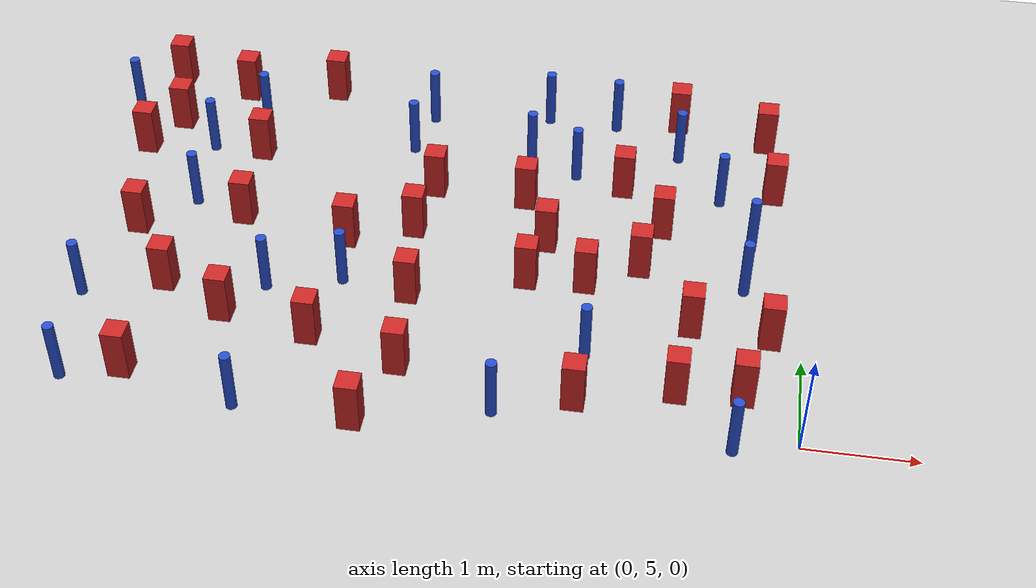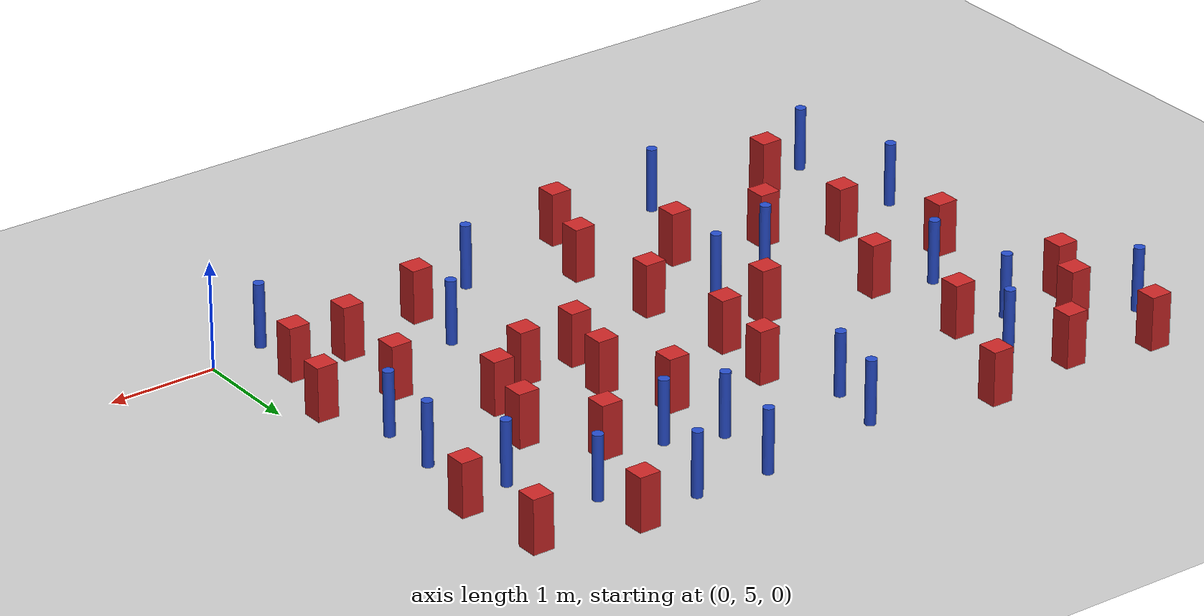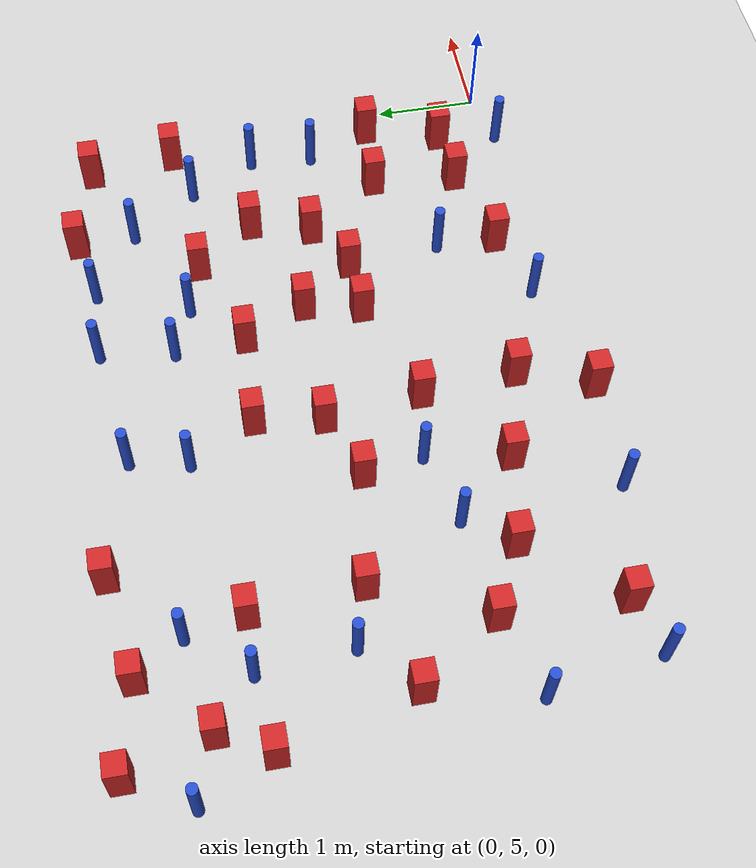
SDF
<sdf version="1.6">
 <world name="default">
  <model name="ground_plane">
   <static>1</static>
   <link name="link">
    <collision name="collision">
     <geometry><plane><normal>0 0 1</normal><size>100 100</size></plane></geometry>
     <surface><friction><ode><mu>100</mu><mu2>50</mu2></ode></friction></surface>
    </collision>
    <visual name="visual">
     <cast_shadows>0</cast_shadows>
     <geometry><plane><normal>0 0 1</normal><size>100 100</size></plane></geometry>
     <material>
      <ambient>1.0 1.0 1.0 1.0</ambient>
      <diffuse>0.8 0.8 0.8 1.0</diffuse>
      <specular>0.01 0.01 0.01 1.000000</specular>
     </material>
    </visual>
   </link>
  </model>
  <model name="pole_obstacle8">
   <static>true</static>
   <pose>-3.82206462456 9.02512292885 7.38925637345e-09 -8.47170692799e-08 1.24976765012e-08 -1.74513093021e-07</pose>
   <link name="link">
    <pose>0 0 0.3 0 -0 0</pose>
    <inertial>
     <mass>1</mass>
     <inertia><ixx>0.145833</ixx><ixy>0</ixy><ixz>0</ixz><iyy>0.145833</iyy><iyz>0</iyz><izz>0.125</izz></inertia>
    </inertial>
    <collision name="collision">
     <geometry><cylinder><radius>0.05</radius><length>.6</length></cylinder></geometry>
    </collision>
    <visual name="visual">
     <geometry><cylinder><radius>0.05</radius><length>.6</length></cylinder></geometry>
     <material>
      <script><name>Gazebo/Blue</name><uri>file://media/materials/scripts/gazebo.material</uri></script>
     </material>
    </visual>
   </link>
  </model>
  <model name="pole_obstacle10">
   <static>true</static>
   <pose>-6.55610675831 5.88170207349 7.38925637345e-09 -8.47170692796e-08 1.24976764786e-08 -1.74513093032e-07</pose>
   <link name="link">
    <pose>0 0 0.3 0 -0 0</pose>
    <inertial>
     <mass>1</mass>
     <inertia><ixx>0.145833</ixx><ixy>0</ixy><ixz>0</ixz><iyy>0.145833</iyy><iyz>0</iyz><izz>0.125</izz></inertia>
    </inertial>
    <collision name="collision">
     <geometry><cylinder><radius>0.05</radius><length>.6</length></cylinder></geometry>
    </collision>
    <visual name="visual">
     <geometry><cylinder><radius>0.05</radius><length>.6</length></cylinder></geometry>
     <material>
      <script><name>Gazebo/Blue</name><uri>file://media/materials/scripts/gazebo.material</uri></script>
     </material>
    </visual>
   </link>
  </model>
  <model name="square_post_obstacle21">
   <static>true</static>
   <pose>-4.3045964948 6.98042461301 1.91545236811e-07 -7.35059704564e-06 1.12565212e-07 2.39332434364e-05</pose>
   <link name="link">
    <pose>0 0 0.25 0 -0 0</pose>
    <inertial>
     <mass>100</mass>
     <inertia>
      <ixx>0.166667</ixx>
      <ixy>0</ixy>
      <ixz>0</ixz>
      <iyy>0.166667</iyy>
      <iyz>0</iyz>
      <izz>0.166667</izz>
     </inertia>
    </inertial>
    <collision name="collision"><geometry><box><size>.2 .2 .5</size></box></geometry></collision>
    <visual name="visual">
     <geometry><box><size>.2 .2 .5</size></box></geometry>
     <material>
      <script><name>Gazebo/Red</name><uri>file://media/materials/scripts/gazebo.material</uri></script>
     </material>
    </visual>
   </link>
  </model>
  <model name="pole_obstacle14">
   <static>true</static>
   <pose>-0.487251782713 7.45424853015 7.38925637345e-09 -8.471706928e-08 1.24976765062e-08 -1.74513093016e-07</pose>
   <link name="link">
    <pose>0 0 0.3 0 -0 0</pose>
    <inertial>
     <mass>1</mass>
     <inertia><ixx>0.145833</ixx><ixy>0</ixy><ixz>0</ixz><iyy>0.145833</iyy><iyz>0</iyz><izz>0.125</izz></inertia>
    </inertial>
    <collision name="collision">
     <geometry><cylinder><radius>0.05</radius><length>.6</length></cylinder></geometry>
    </collision>
    <visual name="visual">
     <geometry><cylinder><radius>0.05</radius><length>.6</length></cylinder></geometry>
     <material>
      <script><name>Gazebo/Blue</name><uri>file://media/materials/scripts/gazebo.material</uri></script>
     </material>
    </visual>
   </link>
  </model>
  <model name="square_post_obstacle24">
   <static>true</static>
   <pose>-1.34190381826 7.57631637367 1.91545236811e-07 -7.35059704564e-06 1.12565212e-07 2.39332434364e-05</pose>
   <link name="link">
    <pose>0 0 0.25 0 -0 0</pose>
    <inertial>
     <mass>100</mass>
     <inertia>
      <ixx>0.166667</ixx>
      <ixy>0</ixy>
      <ixz>0</ixz>
      <iyy>0.166667</iyy>
      <iyz>0</iyz>
      <izz>0.166667</izz>
     </inertia>
    </inertial>
    <collision name="collision"><geometry><box><size>.2 .2 .5</size></box></geometry></collision>
    <visual name="visual">
     <geometry><box><size>.2 .2 .5</size></box></geometry>
     <material>
      <script><name>Gazebo/Red</name><uri>file://media/materials/scripts/gazebo.material</uri></script>
     </material>
    </visual>
   </link>
  </model>
  <model name="square_post_obstacle25">
   <static>true</static>
   <pose>-5.35857846901 7.15570614176 1.91545236811e-07 -7.35059704564e-06 1.12565212e-07 2.39332434364e-05</pose>
   <link name="link">
    <pose>0 0 0.25 0 -0 0</pose>
    <inertial>
     <mass>100</mass>
     <inertia>
      <ixx>0.166667</ixx>
      <ixy>0</ixy>
      <ixz>0</ixz>
      <iyy>0.166667</iyy>
      <iyz>0</iyz>
      <izz>0.166667</izz>
     </inertia>
    </inertial>
    <collision name="collision"><geometry><box><size>.2 .2 .5</size></box></geometry></collision>
    <visual name="visual">
     <geometry><box><size>.2 .2 .5</size></box></geometry>
     <material>
      <script><name>Gazebo/Red</name><uri>file://media/materials/scripts/gazebo.material</uri></script>
     </material>
    </visual>
   </link>
  </model>
  <model name="square_post_obstacle29">
   <static>true</static>
   <pose>-1.98612517827 6.69314189389 1.91545236811e-07 -7.35059704564e-06 1.12565212e-07 2.39332434364e-05</pose>
   <link name="link">
    <pose>0 0 0.25 0 -0 0</pose>
    <inertial>
     <mass>100</mass>
     <inertia>
      <ixx>0.166667</ixx>
      <ixy>0</ixy>
      <ixz>0</ixz>
      <iyy>0.166667</iyy>
      <iyz>0</iyz>
      <izz>0.166667</izz>
     </inertia>
    </inertial>
    <collision name="collision"><geometry><box><size>.2 .2 .5</size></box></geometry></collision>
    <visual name="visual">
     <geometry><box><size>.2 .2 .5</size></box></geometry>
     <material>
      <script><name>Gazebo/Red</name><uri>file://media/materials/scripts/gazebo.material</uri></script>
     </material>
    </visual>
   </link>
  </model>
  <model name="pole_obstacle25">
   <static>true</static>
   <pose>-1.2587366664 8.73435117649 7.38925637345e-09 -8.47170692798e-08 1.24976764881e-08 -1.74513093027e-07</pose>
   <link name="link">
    <pose>0 0 0.3 0 -0 0</pose>
    <inertial>
     <mass>1</mass>
     <inertia><ixx>0.145833</ixx><ixy>0</ixy><ixz>0</ixz><iyy>0.145833</iyy><iyz>0</iyz><izz>0.125</izz></inertia>
    </inertial>
    <collision name="collision">
     <geometry><cylinder><radius>0.05</radius><length>.6</length></cylinder></geometry>
    </collision>
    <visual name="visual">
     <geometry><cylinder><radius>0.05</radius><length>.6</length></cylinder></geometry>
     <material>
      <script><name>Gazebo/Blue</name><uri>file://media/materials/scripts/gazebo.material</uri></script>
     </material>
    </visual>
   </link>
  </model>
  <model name="pole_obstacle29">
   <static>true</static>
   <pose>-4.21491245848 6.41125337489 7.38925637345e-09 -8.47170692796e-08 1.24976764786e-08 -1.74513093032e-07</pose>
   <link name="link">
    <pose>0 0 0.3 0 -0 0</pose>
    <inertial>
     <mass>1</mass>
     <inertia><ixx>0.145833</ixx><ixy>0</ixy><ixz>0</ixz><iyy>0.145833</iyy><iyz>0</iyz><izz>0.125</izz></inertia>
    </inertial>
    <collision name="collision">
     <geometry><cylinder><radius>0.05</radius><length>.6</length></cylinder></geometry>
    </collision>
    <visual name="visual">
     <geometry><cylinder><radius>0.05</radius><length>.6</length></cylinder></geometry>
     <material>
      <script><name>Gazebo/Blue</name><uri>file://media/materials/scripts/gazebo.material</uri></script>
     </material>
    </visual>
   </link>
  </model>
  <model name="pole_obstacle40">
   <static>true</static>
   <pose>-4.89472344938 6.21809530151 7.38925637345e-09 -8.47170692796e-08 1.24976764786e-08 -1.74513093032e-07</pose>
   <link name="link">
    <pose>0 0 0.3 0 -0 0</pose>
    <inertial>
     <mass>1</mass>
     <inertia><ixx>0.145833</ixx><ixy>0</ixy><ixz>0</ixz><iyy>0.145833</iyy><iyz>0</iyz><izz>0.125</izz></inertia>
    </inertial>
    <collision name="collision">
     <geometry><cylinder><radius>0.05</radius><length>.6</length></cylinder></geometry>
    </collision>
    <visual name="visual">
     <geometry><cylinder><radius>0.05</radius><length>.6</length></cylinder></geometry>
     <material>
      <script><name>Gazebo/Blue</name><uri>file://media/materials/scripts/gazebo.material</uri></script>
     </material>
    </visual>
   </link>
  </model>
  <model name="square_post_obstacle48">
   <static>true</static>
   <pose>-0.403407051033 9.08101264634 1.91545236811e-07 -7.35059704564e-06 1.12565212e-07 2.39332434364e-05</pose>
   <link name="link">
    <pose>0 0 0.25 0 -0 0</pose>
    <inertial>
     <mass>100</mass>
     <inertia>
      <ixx>0.166667</ixx>
      <ixy>0</ixy>
      <ixz>0</ixz>
      <iyy>0.166667</iyy>
      <iyz>0</iyz>
      <izz>0.166667</izz>
     </inertia>
    </inertial>
    <collision name="collision"><geometry><box><size>.2 .2 .5</size></box></geometry></collision>
    <visual name="visual">
     <geometry><box><size>.2 .2 .5</size></box></geometry>
     <material>
      <script><name>Gazebo/Red</name><uri>file://media/materials/scripts/gazebo.material</uri></script>
     </material>
    </visual>
   </link>
  </model>
  <model name="square_post_obstacle56">
   <static>true</static>
   <pose>-4.35194648026 5.64008125414 1.91545236811e-07 -7.35059704564e-06 1.12565212e-07 2.39332434364e-05</pose>
   <link name="link">
    <pose>0 0 0.25 0 -0 0</pose>
    <inertial>
     <mass>100</mass>
     <inertia>
      <ixx>0.166667</ixx>
      <ixy>0</ixy>
      <ixz>0</ixz>
      <iyy>0.166667</iyy>
      <iyz>0</iyz>
      <izz>0.166667</izz>
     </inertia>
    </inertial>
    <collision name="collision"><geometry><box><size>.2 .2 .5</size></box></geometry></collision>
    <visual name="visual">
     <geometry><box><size>.2 .2 .5</size></box></geometry>
     <material>
      <script><name>Gazebo/Red</name><uri>file://media/materials/scripts/gazebo.material</uri></script>
     </material>
    </visual>
   </link>
  </model>
  <model name="square_post_obstacle63">
   <static>true</static>
   <pose>-3.68970607952 7.22125167198 1.91545236811e-07 -7.35059704564e-06 1.12565212e-07 2.39332434364e-05</pose>
   <link name="link">
    <pose>0 0 0.25 0 -0 0</pose>
    <inertial>
     <mass>100</mass>
     <inertia>
      <ixx>0.166667</ixx>
      <ixy>0</ixy>
      <ixz>0</ixz>
      <iyy>0.166667</iyy>
      <iyz>0</iyz>
      <izz>0.166667</izz>
     </inertia>
    </inertial>
    <collision name="collision"><geometry><box><size>.2 .2 .5</size></box></geometry></collision>
    <visual name="visual">
     <geometry><box><size>.2 .2 .5</size></box></geometry>
     <material>
      <script><name>Gazebo/Red</name><uri>file://media/materials/scripts/gazebo.material</uri></script>
     </material>
    </visual>
   </link>
  </model>
  <model name="square_post_obstacle72">
   <static>true</static>
   <pose>-4.92007702492 9.30849317937 1.91545236811e-07 -7.35059704564e-06 1.12565212e-07 2.39332434364e-05</pose>
   <link name="link">
    <pose>0 0 0.25 0 -0 0</pose>
    <inertial>
     <mass>100</mass>
     <inertia>
      <ixx>0.166667</ixx>
      <ixy>0</ixy>
      <ixz>0</ixz>
      <iyy>0.166667</iyy>
      <iyz>0</iyz>
      <izz>0.166667</izz>
     </inertia>
    </inertial>
    <collision name="collision"><geometry><box><size>.2 .2 .5</size></box></geometry></collision>
    <visual name="visual">
     <geometry><box><size>.2 .2 .5</size></box></geometry>
     <material>
      <script><name>Gazebo/Red</name><uri>file://media/materials/scripts/gazebo.material</uri></script>
     </material>
    </visual>
   </link>
  </model>
  <model name="square_post_obstacle74">
   <static>true</static>
   <pose>-3.57919890928 6.30277527051 1.91545236811e-07 -7.35059704564e-06 1.12565212e-07 2.39332434364e-05</pose>
   <link name="link">
    <pose>0 0 0.25 0 -0 0</pose>
    <inertial>
     <mass>100</mass>
     <inertia>
      <ixx>0.166667</ixx>
      <ixy>0</ixy>
      <ixz>0</ixz>
      <iyy>0.166667</iyy>
      <iyz>0</iyz>
      <izz>0.166667</izz>
     </inertia>
    </inertial>
    <collision name="collision"><geometry><box><size>.2 .2 .5</size></box></geometry></collision>
    <visual name="visual">
     <geometry><box><size>.2 .2 .5</size></box></geometry>
     <material>
      <script><name>Gazebo/Red</name><uri>file://media/materials/scripts/gazebo.material</uri></script>
     </material>
    </visual>
   </link>
  </model>
  <model name="pole_obstacle75">
   <static>true</static>
   <pose>-6.37267081743 4.82648727636 7.38925637345e-09 -8.47170692796e-08 1.24976764786e-08 -1.74513093032e-07</pose>
   <link name="link">
    <pose>0 0 0.3 0 -0 0</pose>
    <inertial>
     <mass>1</mass>
     <inertia><ixx>0.145833</ixx><ixy>0</ixy><ixz>0</ixz><iyy>0.145833</iyy><iyz>0</iyz><izz>0.125</izz></inertia>
    </inertial>
    <collision name="collision">
     <geometry><cylinder><radius>0.05</radius><length>.6</length></cylinder></geometry>
    </collision>
    <visual name="visual">
     <geometry><cylinder><radius>0.05</radius><length>.6</length></cylinder></geometry>
     <material>
      <script><name>Gazebo/Blue</name><uri>file://media/materials/scripts/gazebo.material</uri></script>
     </material>
    </visual>
   </link>
  </model>
  <model name="pole_obstacle79">
   <static>true</static>
   <pose>-0.530865533459 6.83654905438 7.38925637345e-09 -8.471706928e-08 1.24976765117e-08 -1.74513093013e-07</pose>
   <link name="link">
    <pose>0 0 0.3 0 -0 0</pose>
    <inertial>
     <mass>1</mass>
     <inertia><ixx>0.145833</ixx><ixy>0</ixy><ixz>0</ixz><iyy>0.145833</iyy><iyz>0</iyz><izz>0.125</izz></inertia>
    </inertial>
    <collision name="collision">
     <geometry><cylinder><radius>0.05</radius><length>.6</length></cylinder></geometry>
    </collision>
    <visual name="visual">
     <geometry><cylinder><radius>0.05</radius><length>.6</length></cylinder></geometry>
     <material>
      <script><name>Gazebo/Blue</name><uri>file://media/materials/scripts/gazebo.material</uri></script>
     </material>
    </visual>
   </link>
  </model>
  <model name="pole_obstacle83">
   <static>true</static>
   <pose>-0.554646805553 4.87033910405 7.38925637345e-09 -8.471706928e-08 1.24976765086e-08 -1.74513093015e-07</pose>
   <link name="link">
    <pose>0 0 0.3 0 -0 0</pose>
    <inertial>
     <mass>1</mass>
     <inertia><ixx>0.145833</ixx><ixy>0</ixy><ixz>0</ixz><iyy>0.145833</iyy><iyz>0</iyz><izz>0.125</izz></inertia>
    </inertial>
    <collision name="collision">
     <geometry><cylinder><radius>0.05</radius><length>.6</length></cylinder></geometry>
    </collision>
    <visual name="visual">
     <geometry><cylinder><radius>0.05</radius><length>.6</length></cylinder></geometry>
     <material>
      <script><name>Gazebo/Blue</name><uri>file://media/materials/scripts/gazebo.material</uri></script>
     </material>
    </visual>
   </link>
  </model>
  <model name="square_post_obstacle81">
   <static>true</static>
   <pose>-1.06439011656 5.43613494731 1.91545236811e-07 -7.35059704564e-06 1.12565212e-07 2.39332434364e-05</pose>
   <link name="link">
    <pose>0 0 0.25 0 -0 0</pose>
    <inertial>
     <mass>100</mass>
     <inertia>
      <ixx>0.166667</ixx>
      <ixy>0</ixy>
      <ixz>0</ixz>
      <iyy>0.166667</iyy>
      <iyz>0</iyz>
      <izz>0.166667</izz>
     </inertia>
    </inertial>
    <collision name="collision"><geometry><box><size>.2 .2 .5</size></box></geometry></collision>
    <visual name="visual">
     <geometry><box><size>.2 .2 .5</size></box></geometry>
     <material>
      <script><name>Gazebo/Red</name><uri>file://media/materials/scripts/gazebo.material</uri></script>
     </material>
    </visual>
   </link>
  </model>
  <model name="pole_obstacle95">
   <static>true</static>
   <pose>-4.79074152801 4.71663315275 7.38925637345e-09 -8.47170692796e-08 1.24976764786e-08 -1.74513093032e-07</pose>
   <link name="link">
    <pose>0 0 0.3 0 -0 0</pose>
    <inertial>
     <mass>1</mass>
     <inertia><ixx>0.145833</ixx><ixy>0</ixy><ixz>0</ixz><iyy>0.145833</iyy><iyz>0</iyz><izz>0.125</izz></inertia>
    </inertial>
    <collision name="collision">
     <geometry><cylinder><radius>0.05</radius><length>.6</length></cylinder></geometry>
    </collision>
    <visual name="visual">
     <geometry><cylinder><radius>0.05</radius><length>.6</length></cylinder></geometry>
     <material>
      <script><name>Gazebo/Blue</name><uri>file://media/materials/scripts/gazebo.material</uri></script>
     </material>
    </visual>
   </link>
  </model>
  <model name="square_post_obstacle85">
   <static>true</static>
   <pose>-5.19582386874 5.80616912891 1.91545236811e-07 -7.35059704564e-06 1.12565212e-07 2.39332434364e-05</pose>
   <link name="link">
    <pose>0 0 0.25 0 -0 0</pose>
    <inertial>
     <mass>100</mass>
     <inertia>
      <ixx>0.166667</ixx>
      <ixy>0</ixy>
      <ixz>0</ixz>
      <iyy>0.166667</iyy>
      <iyz>0</iyz>
      <izz>0.166667</izz>
     </inertia>
    </inertial>
    <collision name="collision"><geometry><box><size>.2 .2 .5</size></box></geometry></collision>
    <visual name="visual">
     <geometry><box><size>.2 .2 .5</size></box></geometry>
     <material>
      <script><name>Gazebo/Red</name><uri>file://media/materials/scripts/gazebo.material</uri></script>
     </material>
    </visual>
   </link>
  </model>
  <model name="pole_obstacle106">
   <static>true</static>
   <pose>-5.96531714351 8.18852639938 7.38925637345e-09 -8.471706928e-08 1.24976765081e-08 -1.74513093015e-07</pose>
   <link name="link">
    <pose>0 0 0.3 0 -0 0</pose>
    <inertial>
     <mass>1</mass>
     <inertia><ixx>0.145833</ixx><ixy>0</ixy><ixz>0</ixz><iyy>0.145833</iyy><iyz>0</iyz><izz>0.125</izz></inertia>
    </inertial>
    <collision name="collision">
     <geometry><cylinder><radius>0.05</radius><length>.6</length></cylinder></geometry>
    </collision>
    <visual name="visual">
     <geometry><cylinder><radius>0.05</radius><length>.6</length></cylinder></geometry>
     <material>
      <script><name>Gazebo/Blue</name><uri>file://media/materials/scripts/gazebo.material</uri></script>
     </material>
    </visual>
   </link>
  </model>
  <model name="square_post_obstacle94">
   <static>true</static>
   <pose>-2.53074050167 6.66489583475 1.91545236811e-07 -7.35059704564e-06 1.12565212e-07 2.39332434364e-05</pose>
   <link name="link">
    <pose>0 0 0.25 0 -0 0</pose>
    <inertial>
     <mass>100</mass>
     <inertia>
      <ixx>0.166667</ixx>
      <ixy>0</ixy>
      <ixz>0</ixz>
      <iyy>0.166667</iyy>
      <iyz>0</iyz>
      <izz>0.166667</izz>
     </inertia>
    </inertial>
    <collision name="collision"><geometry><box><size>.2 .2 .5</size></box></geometry></collision>
    <visual name="visual">
     <geometry><box><size>.2 .2 .5</size></box></geometry>
     <material>
      <script><name>Gazebo/Red</name><uri>file://media/materials/scripts/gazebo.material</uri></script>
     </material>
    </visual>
   </link>
  </model>
  <model name="square_post_obstacle95">
   <static>true</static>
   <pose>-0.280602323057 6.2162434328 1.91545236811e-07 -7.35059704564e-06 1.12565212e-07 2.39332434364e-05</pose>
   <link name="link">
    <pose>0 0 0.25 0 -0 0</pose>
    <inertial>
     <mass>100</mass>
     <inertia>
      <ixx>0.166667</ixx>
      <ixy>0</ixy>
      <ixz>0</ixz>
      <iyy>0.166667</iyy>
      <iyz>0</iyz>
      <izz>0.166667</izz>
     </inertia>
    </inertial>
    <collision name="collision"><geometry><box><size>.2 .2 .5</size></box></geometry></collision>
    <visual name="visual">
     <geometry><box><size>.2 .2 .5</size></box></geometry>
     <material>
      <script><name>Gazebo/Red</name><uri>file://media/materials/scripts/gazebo.material</uri></script>
     </material>
    </visual>
   </link>
  </model>
  <model name="pole_obstacle108">
   <static>true</static>
   <pose>-2.6296051062 9.19149806185 7.38925637345e-09 -8.47170692793e-08 1.24976764408e-08 -1.74513093041e-07</pose>
   <link name="link">
    <pose>0 0 0.3 0 -0 0</pose>
    <inertial>
     <mass>1</mass>
     <inertia><ixx>0.145833</ixx><ixy>0</ixy><ixz>0</ixz><iyy>0.145833</iyy><iyz>0</iyz><izz>0.125</izz></inertia>
    </inertial>
    <collision name="collision">
     <geometry><cylinder><radius>0.05</radius><length>.6</length></cylinder></geometry>
    </collision>
    <visual name="visual">
     <geometry><cylinder><radius>0.05</radius><length>.6</length></cylinder></geometry>
     <material>
      <script><name>Gazebo/Blue</name><uri>file://media/materials/scripts/gazebo.material</uri></script>
     </material>
    </visual>
   </link>
  </model>
  <model name="pole_obstacle109">
   <static>true</static>
   <pose>-2.5933989536 4.98916896431 7.38925637345e-09 -8.47170692798e-08 1.24976765033e-08 -1.74513093019e-07</pose>
   <link name="link">
    <pose>0 0 0.3 0 -0 0</pose>
    <inertial>
     <mass>1</mass>
     <inertia><ixx>0.145833</ixx><ixy>0</ixy><ixz>0</ixz><iyy>0.145833</iyy><iyz>0</iyz><izz>0.125</izz></inertia>
    </inertial>
    <collision name="collision">
     <geometry><cylinder><radius>0.05</radius><length>.6</length></cylinder></geometry>
    </collision>
    <visual name="visual">
     <geometry><cylinder><radius>0.05</radius><length>.6</length></cylinder></geometry>
     <material>
      <script><name>Gazebo/Blue</name><uri>file://media/materials/scripts/gazebo.material</uri></script>
     </material>
    </visual>
   </link>
  </model>
  <model name="pole_obstacle110">
   <static>true</static>
   <pose>-5.88621984248 7.31610643793 7.38925637345e-09 -8.47170692796e-08 1.24976764786e-08 -1.74513093032e-07</pose>
   <link name="link">
    <pose>0 0 0.3 0 -0 0</pose>
    <inertial>
     <mass>1</mass>
     <inertia><ixx>0.145833</ixx><ixy>0</ixy><ixz>0</ixz><iyy>0.145833</iyy><iyz>0</iyz><izz>0.125</izz></inertia>
    </inertial>
    <collision name="collision">
     <geometry><cylinder><radius>0.05</radius><length>.6</length></cylinder></geometry>
    </collision>
    <visual name="visual">
     <geometry><cylinder><radius>0.05</radius><length>.6</length></cylinder></geometry>
     <material>
      <script><name>Gazebo/Blue</name><uri>file://media/materials/scripts/gazebo.material</uri></script>
     </material>
    </visual>
   </link>
  </model>
  <model name="square_post_obstacle103">
   <static>true</static>
   <pose>-3.49818858472 5.39473668093 1.91545236811e-07 -7.35059704564e-06 1.12565212e-07 2.39332434364e-05</pose>
   <link name="link">
    <pose>0 0 0.25 0 -0 0</pose>
    <inertial>
     <mass>100</mass>
     <inertia>
      <ixx>0.166667</ixx>
      <ixy>0</ixy>
      <ixz>0</ixz>
      <iyy>0.166667</iyy>
      <iyz>0</iyz>
      <izz>0.166667</izz>
     </inertia>
    </inertial>
    <collision name="collision"><geometry><box><size>.2 .2 .5</size></box></geometry></collision>
    <visual name="visual">
     <geometry><box><size>.2 .2 .5</size></box></geometry>
     <material>
      <script><name>Gazebo/Red</name><uri>file://media/materials/scripts/gazebo.material</uri></script>
     </material>
    </visual>
   </link>
  </model>
  <model name="square_post_obstacle109">
   <static>true</static>
   <pose>-1.76757691139 8.14035792633 1.91545236811e-07 -7.35059704564e-06 1.12565212e-07 2.39332434364e-05</pose>
   <link name="link">
    <pose>0 0 0.25 0 -0 0</pose>
    <inertial>
     <mass>100</mass>
     <inertia>
      <ixx>0.166667</ixx>
      <ixy>0</ixy>
      <ixz>0</ixz>
      <iyy>0.166667</iyy>
      <iyz>0</iyz>
      <izz>0.166667</izz>
     </inertia>
    </inertial>
    <collision name="collision"><geometry><box><size>.2 .2 .5</size></box></geometry></collision>
    <visual name="visual">
     <geometry><box><size>.2 .2 .5</size></box></geometry>
     <material>
      <script><name>Gazebo/Red</name><uri>file://media/materials/scripts/gazebo.material</uri></script>
     </material>
    </visual>
   </link>
  </model>
  <model name="square_post_obstacle111">
   <static>true</static>
   <pose>-6.63623175859 8.10664112777 1.91545236811e-07 -7.35059704564e-06 1.12565212e-07 2.39332434364e-05</pose>
   <link name="link">
    <pose>0 0 0.25 0 -0 0</pose>
    <inertial>
     <mass>100</mass>
     <inertia>
      <ixx>0.166667</ixx>
      <ixy>0</ixy>
      <ixz>0</ixz>
      <iyy>0.166667</iyy>
      <iyz>0</iyz>
      <izz>0.166667</izz>
     </inertia>
    </inertial>
    <collision name="collision"><geometry><box><size>.2 .2 .5</size></box></geometry></collision>
    <visual name="visual">
     <geometry><box><size>.2 .2 .5</size></box></geometry>
     <material>
      <script><name>Gazebo/Red</name><uri>file://media/materials/scripts/gazebo.material</uri></script>
     </material>
    </visual>
   </link>
  </model>
  <model name="pole_obstacle133">
   <static>true</static>
   <pose>-6.95051044414 8.76397631887 7.38925637345e-09 -8.471706928e-08 1.24976765081e-08 -1.74513093015e-07</pose>
   <link name="link">
    <pose>0 0 0.3 0 -0 0</pose>
    <inertial>
     <mass>1</mass>
     <inertia><ixx>0.145833</ixx><ixy>0</ixy><ixz>0</ixz><iyy>0.145833</iyy><iyz>0</iyz><izz>0.125</izz></inertia>
    </inertial>
    <collision name="collision">
     <geometry><cylinder><radius>0.05</radius><length>.6</length></cylinder></geometry>
    </collision>
    <visual name="visual">
     <geometry><cylinder><radius>0.05</radius><length>.6</length></cylinder></geometry>
     <material>
      <script><name>Gazebo/Blue</name><uri>file://media/materials/scripts/gazebo.material</uri></script>
     </material>
    </visual>
   </link>
  </model>
  <model name="pole_obstacle138">
   <static>true</static>
   <pose>-1.93087196424 9.16514735695 7.38925637345e-09 -8.47170692798e-08 1.24976764881e-08 -1.74513093027e-07</pose>
   <link name="link">
    <pose>0 0 0.3 0 -0 0</pose>
    <inertial>
     <mass>1</mass>
     <inertia><ixx>0.145833</ixx><ixy>0</ixy><ixz>0</ixz><iyy>0.145833</iyy><iyz>0</iyz><izz>0.125</izz></inertia>
    </inertial>
    <collision name="collision">
     <geometry><cylinder><radius>0.05</radius><length>.6</length></cylinder></geometry>
    </collision>
    <visual name="visual">
     <geometry><cylinder><radius>0.05</radius><length>.6</length></cylinder></geometry>
     <material>
      <script><name>Gazebo/Blue</name><uri>file://media/materials/scripts/gazebo.material</uri></script>
     </material>
    </visual>
   </link>
  </model>
  <model name="square_post_obstacle122">
   <static>true</static>
   <pose>-6.39860686602 8.5599530788 1.91545236811e-07 -7.35059704564e-06 1.12565212e-07 2.39332434364e-05</pose>
   <link name="link">
    <pose>0 0 0.25 0 -0 0</pose>
    <inertial>
     <mass>100</mass>
     <inertia>
      <ixx>0.166667</ixx>
      <ixy>0</ixy>
      <ixz>0</ixz>
      <iyy>0.166667</iyy>
      <iyz>0</iyz>
      <izz>0.166667</izz>
     </inertia>
    </inertial>
    <collision name="collision"><geometry><box><size>.2 .2 .5</size></box></geometry></collision>
    <visual name="visual">
     <geometry><box><size>.2 .2 .5</size></box></geometry>
     <material>
      <script><name>Gazebo/Red</name><uri>file://media/materials/scripts/gazebo.material</uri></script>
     </material>
    </visual>
   </link>
  </model>
  <model name="square_post_obstacle123">
   <static>true</static>
   <pose>-3.74651887932 4.70047802236 1.91545236811e-07 -7.35059704564e-06 1.12565212e-07 2.39332434364e-05</pose>
   <link name="link">
    <pose>0 0 0.25 0 -0 0</pose>
    <inertial>
     <mass>100</mass>
     <inertia>
      <ixx>0.166667</ixx>
      <ixy>0</ixy>
      <ixz>0</ixz>
      <iyy>0.166667</iyy>
      <iyz>0</iyz>
      <izz>0.166667</izz>
     </inertia>
    </inertial>
    <collision name="collision"><geometry><box><size>.2 .2 .5</size></box></geometry></collision>
    <visual name="visual">
     <geometry><box><size>.2 .2 .5</size></box></geometry>
     <material>
      <script><name>Gazebo/Red</name><uri>file://media/materials/scripts/gazebo.material</uri></script>
     </material>
    </visual>
   </link>
  </model>
  <model name="square_post_obstacle127">
   <static>true</static>
   <pose>-6.63089012068 9.32858692312 1.91545236811e-07 -7.35059704564e-06 1.12565212e-07 2.39332434364e-05</pose>
   <link name="link">
    <pose>0 0 0.25 0 -0 0</pose>
    <inertial>
     <mass>100</mass>
     <inertia>
      <ixx>0.166667</ixx>
      <ixy>0</ixy>
      <ixz>0</ixz>
      <iyy>0.166667</iyy>
      <iyz>0</iyz>
      <izz>0.166667</izz>
     </inertia>
    </inertial>
    <collision name="collision"><geometry><box><size>.2 .2 .5</size></box></geometry></collision>
    <visual name="visual">
     <geometry><box><size>.2 .2 .5</size></box></geometry>
     <material>
      <script><name>Gazebo/Red</name><uri>file://media/materials/scripts/gazebo.material</uri></script>
     </material>
    </visual>
   </link>
  </model>
  <model name="square_post_obstacle128">
   <static>true</static>
   <pose>-0.298340017352 8.25667696657 1.91545236811e-07 -7.35059704564e-06 1.12565212e-07 2.39332434364e-05</pose>
   <link name="link">
    <pose>0 0 0.25 0 -0 0</pose>
    <inertial>
     <mass>100</mass>
     <inertia>
      <ixx>0.166667</ixx>
      <ixy>0</ixy>
      <ixz>0</ixz>
      <iyy>0.166667</iyy>
      <iyz>0</iyz>
      <izz>0.166667</izz>
     </inertia>
    </inertial>
    <collision name="collision"><geometry><box><size>.2 .2 .5</size></box></geometry></collision>
    <visual name="visual">
     <geometry><box><size>.2 .2 .5</size></box></geometry>
     <material>
      <script><name>Gazebo/Red</name><uri>file://media/materials/scripts/gazebo.material</uri></script>
     </material>
    </visual>
   </link>
  </model>
  <model name="square_post_obstacle132">
   <static>true</static>
   <pose>-1.29247726167 9.2924669874 1.91545236811e-07 -7.35059704564e-06 1.12565212e-07 2.39332434364e-05</pose>
   <link name="link">
    <pose>0 0 0.25 0 -0 0</pose>
    <inertial>
     <mass>100</mass>
     <inertia>
      <ixx>0.166667</ixx>
      <ixy>0</ixy>
      <ixz>0</ixz>
      <iyy>0.166667</iyy>
      <iyz>0</iyz>
      <izz>0.166667</izz>
     </inertia>
    </inertial>
    <collision name="collision"><geometry><box><size>.2 .2 .5</size></box></geometry></collision>
    <visual name="visual">
     <geometry><box><size>.2 .2 .5</size></box></geometry>
     <material>
      <script><name>Gazebo/Red</name><uri>file://media/materials/scripts/gazebo.material</uri></script>
     </material>
    </visual>
   </link>
  </model>
  <model name="square_post_obstacle133">
   <static>true</static>
   <pose>-2.69456108766 7.81204493432 1.91545236811e-07 -7.35059704564e-06 1.12565212e-07 2.39332434364e-05</pose>
   <link name="link">
    <pose>0 0 0.25 0 -0 0</pose>
    <inertial>
     <mass>100</mass>
     <inertia>
      <ixx>0.166667</ixx>
      <ixy>0</ixy>
      <ixz>0</ixz>
      <iyy>0.166667</iyy>
      <iyz>0</iyz>
      <izz>0.166667</izz>
     </inertia>
    </inertial>
    <collision name="collision"><geometry><box><size>.2 .2 .5</size></box></geometry></collision>
    <visual name="visual">
     <geometry><box><size>.2 .2 .5</size></box></geometry>
     <material>
      <script><name>Gazebo/Red</name><uri>file://media/materials/scripts/gazebo.material</uri></script>
     </material>
    </visual>
   </link>
  </model>
  <model name="square_post_obstacle135">
   <static>true</static>
   <pose>-1.92093611543 5.21443011539 1.91545236811e-07 -7.35059704564e-06 1.12565212e-07 2.39332434364e-05</pose>
   <link name="link">
    <pose>0 0 0.25 0 -0 0</pose>
    <inertial>
     <mass>100</mass>
     <inertia>
      <ixx>0.166667</ixx>
      <ixy>0</ixy>
      <ixz>0</ixz>
      <iyy>0.166667</iyy>
      <iyz>0</iyz>
      <izz>0.166667</izz>
     </inertia>
    </inertial>
    <collision name="collision"><geometry><box><size>.2 .2 .5</size></box></geometry></collision>
    <visual name="visual">
     <geometry><box><size>.2 .2 .5</size></box></geometry>
     <material>
      <script><name>Gazebo/Red</name><uri>file://media/materials/scripts/gazebo.material</uri></script>
     </material>
    </visual>
   </link>
  </model>
  <model name="square_post_obstacle136">
   <static>true</static>
   <pose>-2.41521971062 7.2089477699 1.91545236811e-07 -7.35059704564e-06 1.12565212e-07 2.39332434364e-05</pose>
   <link name="link">
    <pose>0 0 0.25 0 -0 0</pose>
    <inertial>
     <mass>100</mass>
     <inertia>
      <ixx>0.166667</ixx>
      <ixy>0</ixy>
      <ixz>0</ixz>
      <iyy>0.166667</iyy>
      <iyz>0</iyz>
      <izz>0.166667</izz>
     </inertia>
    </inertial>
    <collision name="collision"><geometry><box><size>.2 .2 .5</size></box></geometry></collision>
    <visual name="visual">
     <geometry><box><size>.2 .2 .5</size></box></geometry>
     <material>
      <script><name>Gazebo/Red</name><uri>file://media/materials/scripts/gazebo.material</uri></script>
     </material>
    </visual>
   </link>
  </model>
  <model name="square_post_obstacle137">
   <static>true</static>
   <pose>-1.50550222667 6.99188850677 1.91545236811e-07 -7.35059704564e-06 1.12565212e-07 2.39332434364e-05</pose>
   <link name="link">
    <pose>0 0 0.25 0 -0 0</pose>
    <inertial>
     <mass>100</mass>
     <inertia>
      <ixx>0.166667</ixx>
      <ixy>0</ixy>
      <ixz>0</ixz>
      <iyy>0.166667</iyy>
      <iyz>0</iyz>
      <izz>0.166667</izz>
     </inertia>
    </inertial>
    <collision name="collision"><geometry><box><size>.2 .2 .5</size></box></geometry></collision>
    <visual name="visual">
     <geometry><box><size>.2 .2 .5</size></box></geometry>
     <material>
      <script><name>Gazebo/Red</name><uri>file://media/materials/scripts/gazebo.material</uri></script>
     </material>
    </visual>
   </link>
  </model>
  <model name="pole_obstacle152">
   <static>true</static>
   <pose>-1.88695277153 5.78293968288 7.38925637345e-09 -8.47170692799e-08 1.24976765033e-08 -1.74513093018e-07</pose>
   <link name="link">
    <pose>0 0 0.3 0 -0 0</pose>
    <inertial>
     <mass>1</mass>
     <inertia><ixx>0.145833</ixx><ixy>0</ixy><ixz>0</ixz><iyy>0.145833</iyy><iyz>0</iyz><izz>0.125</izz></inertia>
    </inertial>
    <collision name="collision">
     <geometry><cylinder><radius>0.05</radius><length>.6</length></cylinder></geometry>
    </collision>
    <visual name="visual">
     <geometry><cylinder><radius>0.05</radius><length>.6</length></cylinder></geometry>
     <material>
      <script><name>Gazebo/Blue</name><uri>file://media/materials/scripts/gazebo.material</uri></script>
     </material>
    </visual>
   </link>
  </model>
  <model name="pole_obstacle153">
   <static>true</static>
   <pose>-0.811831626399 8.09818305222 7.38925637345e-09 -8.47170692797e-08 1.249767648e-08 -1.74513093032e-07</pose>
   <link name="link">
    <pose>0 0 0.3 0 -0 0</pose>
    <inertial>
     <mass>1</mass>
     <inertia><ixx>0.145833</ixx><ixy>0</ixy><ixz>0</ixz><iyy>0.145833</iyy><iyz>0</iyz><izz>0.125</izz></inertia>
    </inertial>
    <collision name="collision">
     <geometry><cylinder><radius>0.05</radius><length>.6</length></cylinder></geometry>
    </collision>
    <visual name="visual">
     <geometry><cylinder><radius>0.05</radius><length>.6</length></cylinder></geometry>
     <material>
      <script><name>Gazebo/Blue</name><uri>file://media/materials/scripts/gazebo.material</uri></script>
     </material>
    </visual>
   </link>
  </model>
  <model name="square_post_obstacle154">
   <static>true</static>
   <pose>-0.491725458304 5.4874470083 1.91545236811e-07 -7.35059704564e-06 1.12565212e-07 2.39332434364e-05</pose>
   <link name="link">
    <pose>0 0 0.25 0 -0 0</pose>
    <inertial>
     <mass>100</mass>
     <inertia>
      <ixx>0.166667</ixx>
      <ixy>0</ixy>
      <ixz>0</ixz>
      <iyy>0.166667</iyy>
      <iyz>0</iyz>
      <izz>0.166667</izz>
     </inertia>
    </inertial>
    <collision name="collision"><geometry><box><size>.2 .2 .5</size></box></geometry></collision>
    <visual name="visual">
     <geometry><box><size>.2 .2 .5</size></box></geometry>
     <material>
      <script><name>Gazebo/Red</name><uri>file://media/materials/scripts/gazebo.material</uri></script>
     </material>
    </visual>
   </link>
  </model>
  <model name="square_post_obstacle168">
   <static>true</static>
   <pose>-5.84829677226 9.15674940365 1.91545236811e-07 -7.35059704564e-06 1.12565212e-07 2.39332434364e-05</pose>
   <link name="link">
    <pose>0 0 0.25 0 -0 0</pose>
    <inertial>
     <mass>100</mass>
     <inertia>
      <ixx>0.166667</ixx>
      <ixy>0</ixy>
      <ixz>0</ixz>
      <iyy>0.166667</iyy>
      <iyz>0</iyz>
      <izz>0.166667</izz>
     </inertia>
    </inertial>
    <collision name="collision"><geometry><box><size>.2 .2 .5</size></box></geometry></collision>
    <visual name="visual">
     <geometry><box><size>.2 .2 .5</size></box></geometry>
     <material>
      <script><name>Gazebo/Red</name><uri>file://media/materials/scripts/gazebo.material</uri></script>
     </material>
    </visual>
   </link>
  </model>
  <model name="pole_obstacle180">
   <static>true</static>
   <pose>-2.72901205948 8.48556700037 7.38925637345e-09 -8.47170692793e-08 1.24976764408e-08 -1.74513093041e-07</pose>
   <link name="link">
    <pose>0 0 0.3 0 -0 0</pose>
    <inertial>
     <mass>1</mass>
     <inertia><ixx>0.145833</ixx><ixy>0</ixy><ixz>0</ixz><iyy>0.145833</iyy><iyz>0</iyz><izz>0.125</izz></inertia>
    </inertial>
    <collision name="collision">
     <geometry><cylinder><radius>0.05</radius><length>.6</length></cylinder></geometry>
    </collision>
    <visual name="visual">
     <geometry><cylinder><radius>0.05</radius><length>.6</length></cylinder></geometry>
     <material>
      <script><name>Gazebo/Blue</name><uri>file://media/materials/scripts/gazebo.material</uri></script>
     </material>
    </visual>
   </link>
  </model>
  <model name="square_post_obstacle177">
   <static>true</static>
   <pose>-6.32288723939 6.86812352656 1.91545236811e-07 -7.35059704564e-06 1.12565212e-07 2.39332434364e-05</pose>
   <link name="link">
    <pose>0 0 0.25 0 -0 0</pose>
    <inertial>
     <mass>100</mass>
     <inertia>
      <ixx>0.166667</ixx>
      <ixy>0</ixy>
      <ixz>0</ixz>
      <iyy>0.166667</iyy>
      <iyz>0</iyz>
      <izz>0.166667</izz>
     </inertia>
    </inertial>
    <collision name="collision"><geometry><box><size>.2 .2 .5</size></box></geometry></collision>
    <visual name="visual">
     <geometry><box><size>.2 .2 .5</size></box></geometry>
     <material>
      <script><name>Gazebo/Red</name><uri>file://media/materials/scripts/gazebo.material</uri></script>
     </material>
    </visual>
   </link>
  </model>
  <model name="square_post_obstacle188">
   <static>true</static>
   <pose>-0.987369248193 6.26381275977 1.91545236811e-07 -7.35059704564e-06 1.12565212e-07 2.39332434364e-05</pose>
   <link name="link">
    <pose>0 0 0.25 0 -0 0</pose>
    <inertial>
     <mass>100</mass>
     <inertia>
      <ixx>0.166667</ixx>
      <ixy>0</ixy>
      <ixz>0</ixz>
      <iyy>0.166667</iyy>
      <iyz>0</iyz>
      <izz>0.166667</izz>
     </inertia>
    </inertial>
    <collision name="collision"><geometry><box><size>.2 .2 .5</size></box></geometry></collision>
    <visual name="visual">
     <geometry><box><size>.2 .2 .5</size></box></geometry>
     <material>
      <script><name>Gazebo/Red</name><uri>file://media/materials/scripts/gazebo.material</uri></script>
     </material>
    </visual>
   </link>
  </model>
  <model name="square_post_obstacle192">
   <static>true</static>
   <pose>-3.59794623664 7.86138931492 1.91545236811e-07 -7.35059704564e-06 1.12565212e-07 2.39332434364e-05</pose>
   <link name="link">
    <pose>0 0 0.25 0 -0 0</pose>
    <inertial>
     <mass>100</mass>
     <inertia>
      <ixx>0.166667</ixx>
      <ixy>0</ixy>
      <ixz>0</ixz>
      <iyy>0.166667</iyy>
      <iyz>0</iyz>
      <izz>0.166667</izz>
     </inertia>
    </inertial>
    <collision name="collision"><geometry><box><size>.2 .2 .5</size></box></geometry></collision>
    <visual name="visual">
     <geometry><box><size>.2 .2 .5</size></box></geometry>
     <material>
      <script><name>Gazebo/Red</name><uri>file://media/materials/scripts/gazebo.material</uri></script>
     </material>
    </visual>
   </link>
  </model>
  <model name="square_post_obstacle193">
   <static>true</static>
   <pose>-5.8231904916 6.12062413983 1.91545236811e-07 -7.35059704564e-06 1.12565212e-07 2.39332434364e-05</pose>
   <link name="link">
    <pose>0 0 0.25 0 -0 0</pose>
    <inertial>
     <mass>100</mass>
     <inertia>
      <ixx>0.166667</ixx>
      <ixy>0</ixy>
      <ixz>0</ixz>
      <iyy>0.166667</iyy>
      <iyz>0</iyz>
      <izz>0.166667</izz>
     </inertia>
    </inertial>
    <collision name="collision"><geometry><box><size>.2 .2 .5</size></box></geometry></collision>
    <visual name="visual">
     <geometry><box><size>.2 .2 .5</size></box></geometry>
     <material>
      <script><name>Gazebo/Red</name><uri>file://media/materials/scripts/gazebo.material</uri></script>
     </material>
    </visual>
   </link>
  </model>
  <model name="square_post_obstacle199">
   <static>true</static>
   <pose>-5.85435485433 4.98188108525 1.91545236811e-07 -7.35059704564e-06 1.12565212e-07 2.39332434364e-05</pose>
   <link name="link">
    <pose>0 0 0.25 0 -0 0</pose>
    <inertial>
     <mass>100</mass>
     <inertia>
      <ixx>0.166667</ixx>
      <ixy>0</ixy>
      <ixz>0</ixz>
      <iyy>0.166667</iyy>
      <iyz>0</iyz>
      <izz>0.166667</izz>
     </inertia>
    </inertial>
    <collision name="collision"><geometry><box><size>.2 .2 .5</size></box></geometry></collision>
    <visual name="visual">
     <geometry><box><size>.2 .2 .5</size></box></geometry>
     <material>
      <script><name>Gazebo/Red</name><uri>file://media/materials/scripts/gazebo.material</uri></script>
     </material>
    </visual>
   </link>
  </model>
  <model name="square_post_obstacle202">
   <static>true</static>
   <pose>-5.44584967779 8.17477250891 1.91545236811e-07 -7.35059704564e-06 1.12565212e-07 2.39332434364e-05</pose>
   <link name="link">
    <pose>0 0 0.25 0 -0 0</pose>
    <inertial>
     <mass>100</mass>
     <inertia>
      <ixx>0.166667</ixx>
      <ixy>0</ixy>
      <ixz>0</ixz>
      <iyy>0.166667</iyy>
      <iyz>0</iyz>
      <izz>0.166667</izz>
     </inertia>
    </inertial>
    <collision name="collision"><geometry><box><size>.2 .2 .5</size></box></geometry></collision>
    <visual name="visual">
     <geometry><box><size>.2 .2 .5</size></box></geometry>
     <material>
      <script><name>Gazebo/Red</name><uri>file://media/materials/scripts/gazebo.material</uri></script>
     </material>
    </visual>
   </link>
  </model>
  <model name="pole_obstacle197">
   <static>true</static>
   <pose>-3.93444997468 8.47981730889 7.38925637345e-09 -8.47170692793e-08 1.24976764408e-08 -1.74513093041e-07</pose>
   <link name="link">
    <pose>0 0 0.3 0 -0 0</pose>
    <inertial>
     <mass>1</mass>
     <inertia><ixx>0.145833</ixx><ixy>0</ixy><ixz>0</ixz><iyy>0.145833</iyy><iyz>0</iyz><izz>0.125</izz></inertia>
    </inertial>
    <collision name="collision">
     <geometry><cylinder><radius>0.05</radius><length>.6</length></cylinder></geometry>
    </collision>
    <visual name="visual">
     <geometry><cylinder><radius>0.05</radius><length>.6</length></cylinder></geometry>
     <material>
      <script><name>Gazebo/Blue</name><uri>file://media/materials/scripts/gazebo.material</uri></script>
     </material>
    </visual>
   </link>
  </model>
  <model name="pole_obstacle221">
   <static>true</static>
   <pose>-5.55330999043 8.72192002078 7.38925637345e-09 -8.471706928e-08 1.24976765081e-08 -1.74513093015e-07</pose>
   <link name="link">
    <pose>0 0 0.3 0 -0 0</pose>
    <inertial>
     <mass>1</mass>
     <inertia><ixx>0.145833</ixx><ixy>0</ixy><ixz>0</ixz><iyy>0.145833</iyy><iyz>0</iyz><izz>0.125</izz></inertia>
    </inertial>
    <collision name="collision">
     <geometry><cylinder><radius>0.05</radius><length>.6</length></cylinder></geometry>
    </collision>
    <visual name="visual">
     <geometry><cylinder><radius>0.05</radius><length>.6</length></cylinder></geometry>
     <material>
      <script><name>Gazebo/Blue</name><uri>file://media/materials/scripts/gazebo.material</uri></script>
     </material>
    </visual>
   </link>
  </model>
  <model name="pole_obstacle222">
   <static>true</static>
   <pose>-2.25149999043 8.28997002078 7.38925637345e-09 -8.47170692793e-08 1.24976764408e-08 -1.74513093041e-07</pose>
   <link name="link">
    <pose>0 0 0.3 0 -0 0</pose>
    <inertial>
     <mass>1</mass>
     <inertia><ixx>0.145833</ixx><ixy>0</ixy><ixz>0</ixz><iyy>0.145833</iyy><iyz>0</iyz><izz>0.125</izz></inertia>
    </inertial>
    <collision name="collision">
     <geometry><cylinder><radius>0.05</radius><length>.6</length></cylinder></geometry>
    </collision>
    <visual name="visual">
     <geometry><cylinder><radius>0.05</radius><length>.6</length></cylinder></geometry>
     <material>
      <script><name>Gazebo/Blue</name><uri>file://media/materials/scripts/gazebo.material</uri></script>
     </material>
    </visual>
   </link>
  </model>
 </world>
</sdf>
